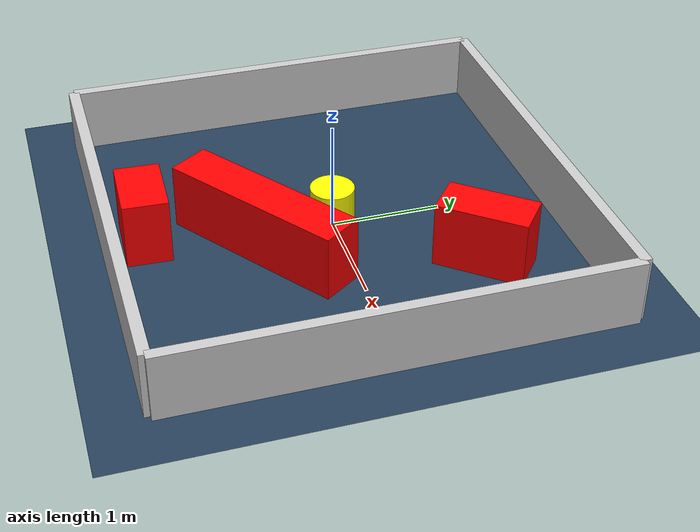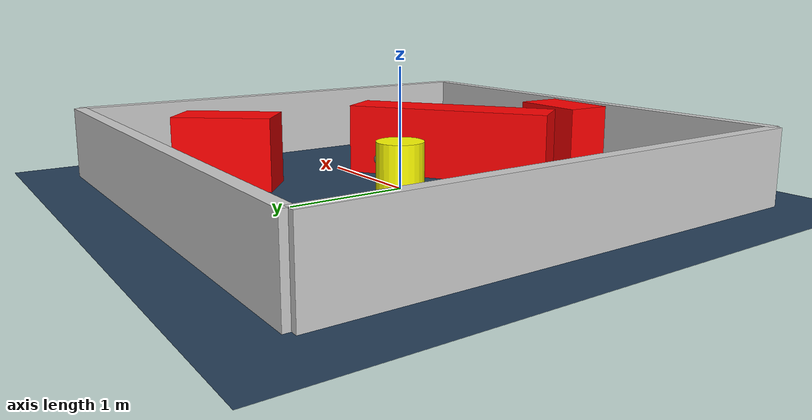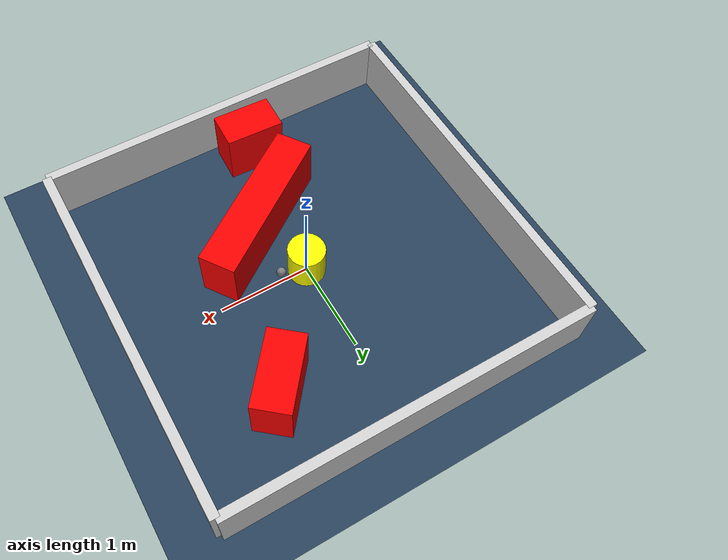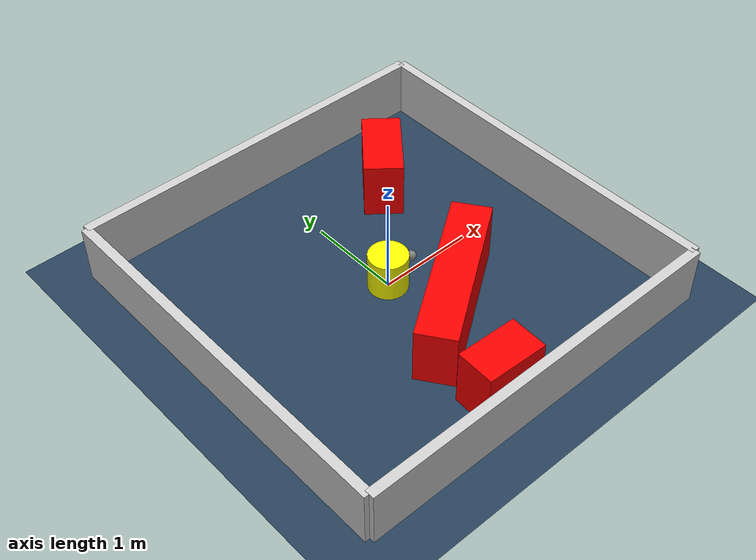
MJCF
<?xml version="1.0" ?>
<mujoco model="generated_environment">
  <option timestep="0.01" integrator="RK4" cone="elliptic"/>
  <default>
    <geom density="1"/>
  </default>
  <asset>
    <texture builtin="gradient" height="3072" rgb1="0.3 0.5 0.7" rgb2="0 0 0" type="skybox" width="512"/>
    <texture builtin="checker" height="300" mark="edge" markrgb="0.8 0.8 0.8" name="groundplane" rgb1="0.2 0.3 0.4" rgb2="0.1 0.2 0.3" type="2d" width="300"/>
    <material name="groundplane" reflectance="0.2" texrepeat="5 5" texture="groundplane" texuniform="true"/>
    <material name="robot" rgba="0.0 1.0 0.0 1"/>
  </asset>
  <worldbody>
    <light dir="0 0 -1" directional="true" pos="0 0 1.5"/>
    <geom condim="4" friction="1.0 0.005 0.001" material="groundplane" name="floor" size="0 0 0.05" type="plane"/>
    <body name="walls">
      <geom name="wall_1" condim="4" pos="-2.0 0.0 0.3" rgba="0.800000011920929 0.800000011920929 0.800000011920929 1.0" size="0.05 2.0 0.3" type="box"/>
      <geom name="wall_2" condim="4" pos="2.0 0.0 0.3" rgba="0.800000011920929 0.800000011920929 0.800000011920929 1.0" size="0.05 2.0 0.3" type="box"/>
      <geom name="wall_3" condim="4" pos="0.0 -2.0 0.3" rgba="0.800000011920929 0.800000011920929 0.800000011920929 1.0" size="2.0 0.05 0.3" type="box"/>
      <geom name="wall_4" condim="4" pos="0.0 2.0 0.3" rgba="0.800000011920929 0.800000011920929 0.800000011920929 1.0" size="2.0 0.05 0.3" type="box"/>
    </body>
    <body name="robot">
      <joint name="joint_x" type="slide" pos="0 0 0" axis="1 0 0"/>
      <joint name="joint_y" type="slide" pos="0 0 0" axis="0 1 0"/>
      <geom name="robot" type="sphere" pos="0.3 0.0 0.2" size="0.05" mass="5." friction="1.0 0.005 0.0001" condim="4" rgba="0.5 0.5 0.5 1.0"/>
      <site name="sensor_ball"/>
    </body>
    <body name="obstacle_movable_1">
      <geom name="obstacle_movable_1" condim="4" pos="0.0 0.0 0.2" euler="0 0 0.0" friction="1.0 0.005 0.001" rgba="1.0 1.0 0.0 1.0" size="0.2 0.2 0.0" type="cylinder" mass="0.1"/>
      <joint type="free"/>
    </body>
    <body name="obstacle_2_static">
      <geom name="obstacle_2_static" condim="4" pos="0.9100223062636217 1.0979157448721757 0.3" euler="0 0 230.37066014445526" friction="1.0 0.005 0.001" rgba="1 0 0 1" size="0.4057928923706569 0.2 0.3" type="box"/>
    </body>
    <body name="obstacle_3_static">
      <geom name="obstacle_3_static" condim="4" pos="0.2020531538859236 -0.6791414429316693 0.3" euler="0 0 214.8762285789323" friction="1.0 0.005 0.001" rgba="1 0 0 1" size="0.8766664976793574 0.2 0.3" type="box"/>
    </body>
    <body name="obstacle_4_static">
      <geom name="obstacle_4_static" condim="4" pos="-0.19711295253714667 -1.6584324080630726 0.3" euler="0 0 357.651090467419" friction="1.0 0.005 0.001" rgba="1 0 0 1" size="0.31942142558592157 0.2 0.3" type="box"/>
    </body>
  </worldbody>
  <actuator>
    <motor name="actuator_x" joint="joint_x" gear="1" ctrlrange="-1 1"/>
    <motor name="actuator_y" joint="joint_y" gear="1" ctrlrange="-1 1"/>
  </actuator>
</mujoco>
